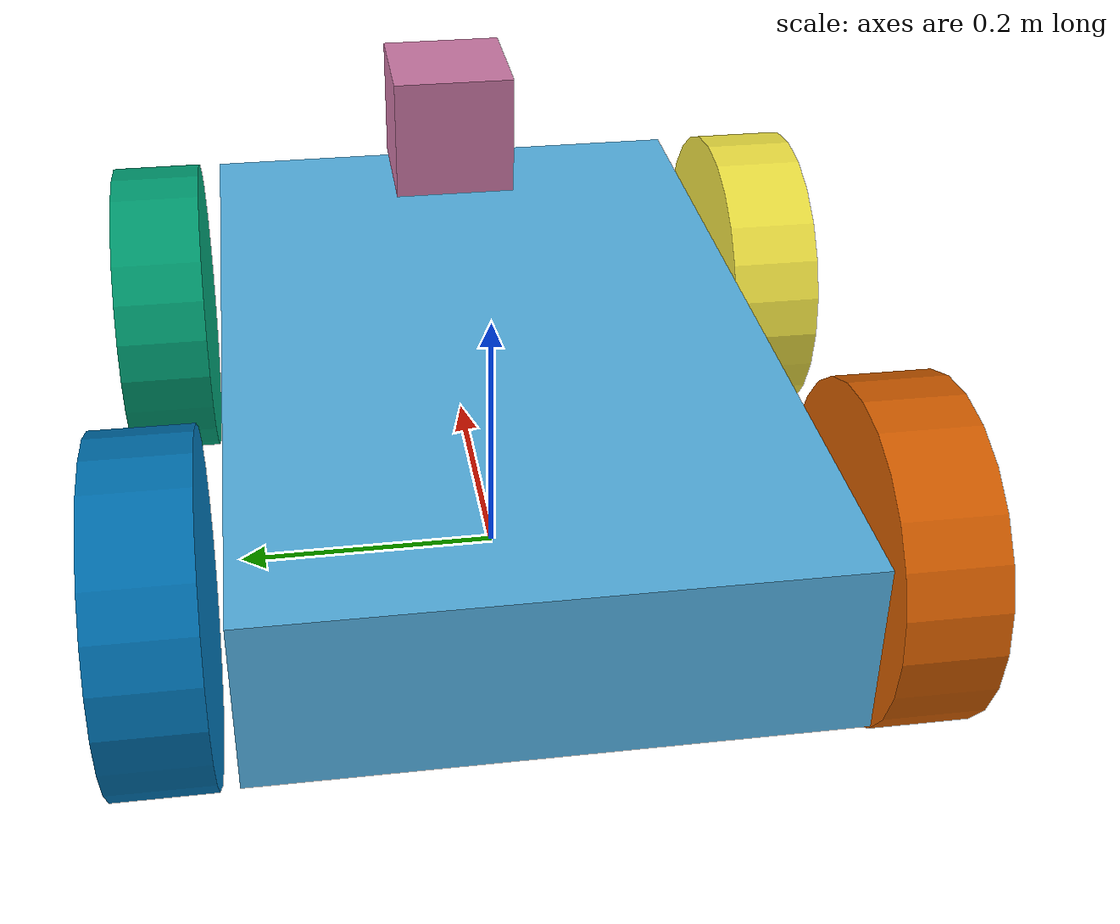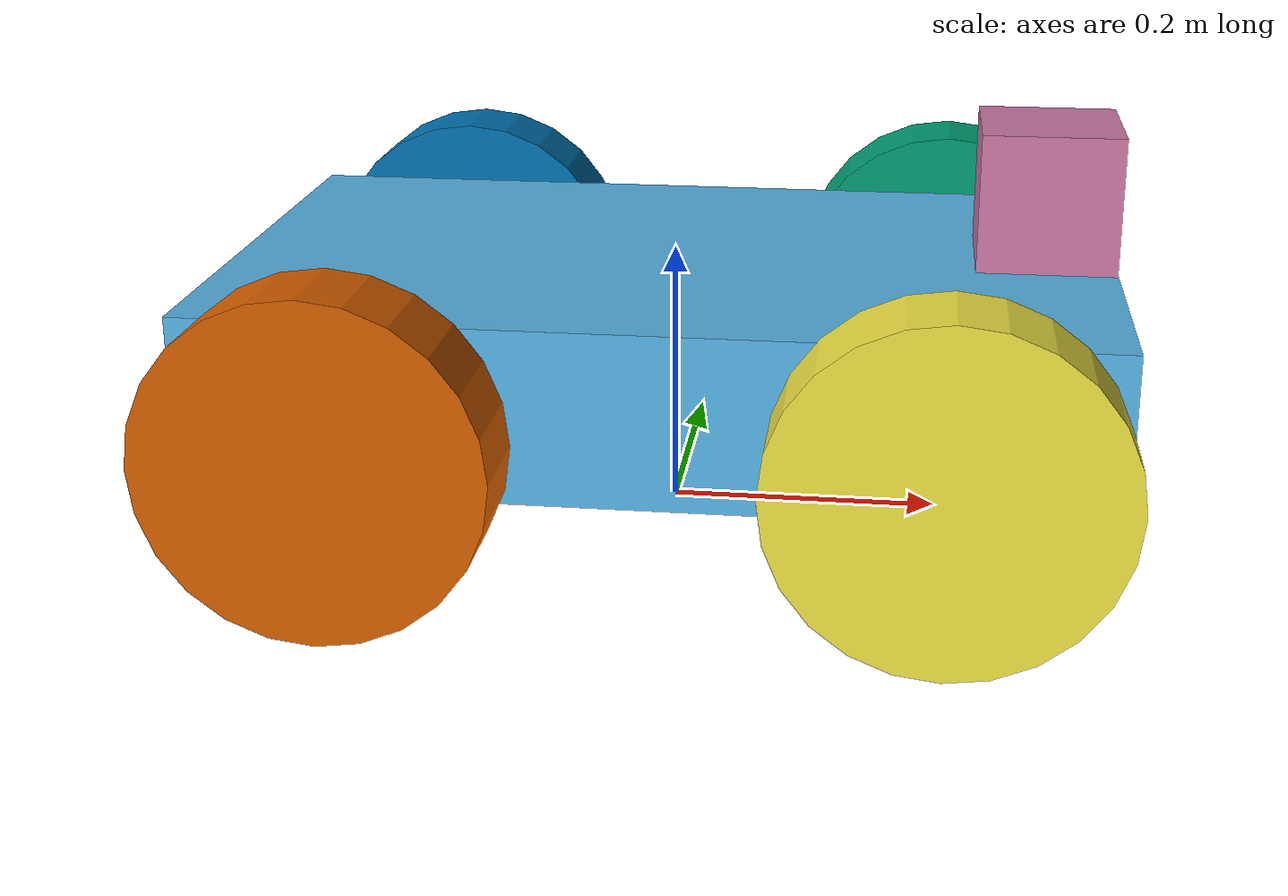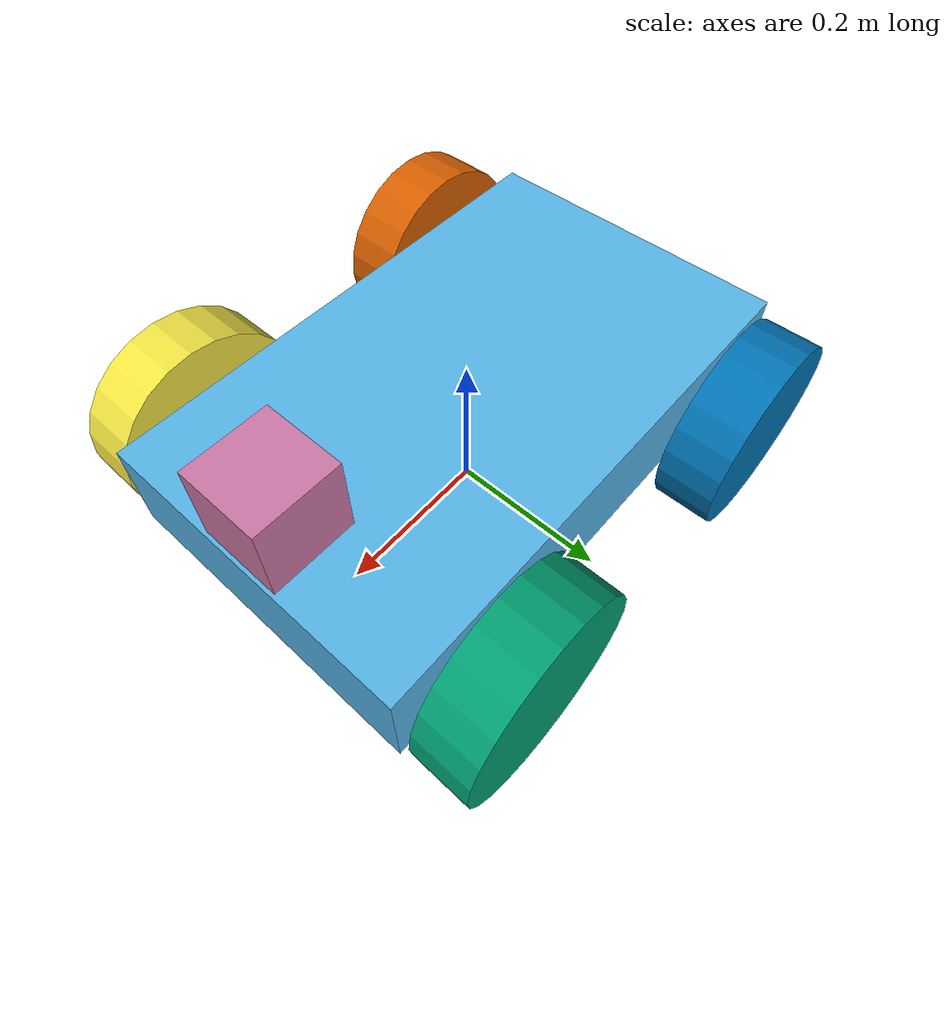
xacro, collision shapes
<?xml version='1.0'?>

<!-- Parametric description for the Avular Origin One. -->
<robot name="avular_origin_one" xmlns:xacro="http://ros.org/wiki/xacro">

  <xacro:arg name="drive_configuration" default="skid_steer_drive"/>

  <!-- Per-robot link/joint prefix (empty = none). -->
  <xacro:arg name="prefix" default=""/>
  <xacro:property name="prefix" value="$(arg prefix)"/>
  <xacro:property name="P" value="${prefix + ('_' if prefix else '')}"/>

  <xacro:property name="var" value="$(arg drive_configuration)"/>
  <xacro:if value="${var == 'skid_steer_drive'}">
    <xacro:property name="trackWidth" value="0.500"/>
    <xacro:property name="wheelbase" value="0.410"/>
    <xacro:property name="wheelRadius" value="0.120"/>
    <xacro:property name="groundClearance" value="0.064"/>
    <xacro:property name="wheelMeshFileA" value="package://origin_one_description/urdf/meshes/wheel.obj"/>
    <xacro:property name="wheelMeshFileB" value="package://origin_one_description/urdf/meshes/wheel.obj"/>
  </xacro:if>
  <xacro:if value="${var == 'big_skid_steer_drive' or var == 'elevated_skid_steer_drive'}">
    <xacro:property name="trackWidth" value="0.530"/>
    <xacro:property name="wheelbase" value="0.410"/>
    <xacro:property name="wheelRadius" value="0.165"/>
    <xacro:property name="groundClearance" value="0.109"/>
    <xacro:property name="wheelMeshFileA" value="package://origin_one_description/urdf/meshes/wheel_big.obj"/>
    <xacro:property name="wheelMeshFileB" value="package://origin_one_description/urdf/meshes/wheel_big.obj"/>
  </xacro:if>
  <xacro:if value="${var == 'mecanum_drive'}">
    <xacro:property name="trackWidth" value="0.475"/>
    <xacro:property name="wheelbase" value="0.410"/>
    <xacro:property name="wheelRadius" value="0.1015"/>
    <xacro:property name="groundClearance" value="0.0455"/>
    <xacro:property name="wheelMeshFileA" value="package://origin_one_description/urdf/meshes/wheel_mecanumA.obj"/>
    <xacro:property name="wheelMeshFileB" value="package://origin_one_description/urdf/meshes/wheel_mecanumB.obj"/>
  </xacro:if>

  <xacro:macro name="wheel_link" params="name visual_rpy mesh">
    <link name="${P}${name}">
      <inertial>
        <mass value="1"/>
        <inertia ixx="0.01" ixy="0.0" ixz="0.0" iyy="0.01" iyz="0.0" izz="0.01"/>
      </inertial>
      <collision>
        <origin xyz="0 0 0.0" rpy="0 0 0"/>
        <geometry>
          <cylinder length=".07" radius="${wheelRadius}"/>
        </geometry>
      </collision>
      <visual>
        <origin xyz="0.0 0.0 0.0" rpy="${visual_rpy}"/>
        <geometry>
          <mesh filename="${mesh}"
            scale="0.001 0.001 0.001" />
        </geometry>
      </visual>
    </link>
  </xacro:macro>

  <xacro:macro name="wheel_joint" params="name xyz">
    <joint type="continuous" name="${P}main_body_${name}">
      <origin xyz="${xyz}" rpy="-1.5707 0 0"/>
      <child link="${P}${name}" />
      <parent link="${P}main_body"/>
      <axis xyz="0 0 1"/>
      <limit effort="100000.0" velocity="10"/>
    </joint>
  </xacro:macro>

  <xacro:macro name="us_link" params="name">
    <link name="${P}us_${name}_link"/>
  </xacro:macro>

  <xacro:macro name="us_joint" params="name xyz rpy">
    <joint type="fixed" name="${P}us_${name}_joint">
      <origin xyz="${xyz}" rpy="${rpy}"/>
      <child link="${P}us_${name}_link"/>
      <parent link="${P}main_body"/>
    </joint>
  </xacro:macro>

  <link name='${P}base_link' />

  <link name='${P}main_body'>
    <inertial>
      <mass value="21.0"/>
      <inertia ixx="0.4" ixy="0.0" ixz="0.0" iyy="0.77" iyz="0.0" izz="1.01"/>
    </inertial>
    <collision name='collision'>
      <origin xyz="0 0 0.07" rpy="0 0 0.0"/>
      <geometry>
        <box size=".65 .4 .125"/>
      </geometry>
    </collision>
    <visual name='visual'>
      <origin xyz="0 0 0" rpy="0 0 0.0"/>
      <geometry>
        <mesh filename="package://origin_one_description/urdf/meshes/body.obj"
          scale="0.001 0.001 0.001" />
      </geometry>
    </visual>
  </link>

  <xacro:wheel_link name="left_front_wheel"  visual_rpy="0.0 1.5707 0.0"  mesh="${wheelMeshFileA}"/>
  <xacro:wheel_link name="right_front_wheel" visual_rpy="0.0 -1.5707 0.0" mesh="${wheelMeshFileB}"/>
  <xacro:wheel_link name="left_rear_wheel"   visual_rpy="0.0 1.5707 0.0"  mesh="${wheelMeshFileB}"/>
  <xacro:wheel_link name="right_rear_wheel"  visual_rpy="0.0 -1.5707 0.0" mesh="${wheelMeshFileA}"/>

  <link name="${P}ouster_base">
    <inertial>
      <mass value="1"/>
      <inertia ixx="0.001" ixy="0.0" ixz="0.0" iyy="0.001" iyz="0.0" izz="0.001"/>
    </inertial>
    <visual name="visual">
      <geometry>
        <mesh filename="package://origin_one_description/urdf/meshes/ouster.obj"
          scale="0.001 0.001 0.001" />
      </geometry>
    </visual>
    <collision name="collision-base">
      <origin xyz="0.0 0.0 0.0" rpy="0.0 0.0 0.0"/>
      <geometry>
        <box size="0.1 0.1 0.1"/>
      </geometry>
    </collision>
  </link>

  <link name="${P}os_sensor" />

  <link name="${P}camera_link">
    <inertial>
      <mass value="0.035"/>
      <inertia ixx="0.001" ixy="0" ixz="0.0" iyy="0.001" iyz="0.0" izz="0.001"/>
    </inertial>
    <collision name="collision">
      <origin xyz="0 0.047 0" rpy="0 0 0"/>
      <geometry>
        <box size="0.008 0.13 0.022"/>
      </geometry>
    </collision>
  </link>

  <link name="${P}gnss_link">
    <visual name="visual_pole">
      <geometry>
        <mesh filename="package://origin_one_description/urdf/meshes/antenna.obj"
          scale="0.001 0.001 0.001" />
      </geometry>
      <origin xyz="0.0 0 0.0" rpy="0 0 0"/>
      <geometry>
        <box size="0.03 0.03 0.1"/>
      </geometry>
    </visual>
  </link>

  <xacro:us_link name="left_front"/>
  <xacro:us_link name="center_front"/>
  <xacro:us_link name="right_front"/>
  <xacro:us_link name="left_rear"/>
  <xacro:us_link name="center_rear"/>
  <xacro:us_link name="right_rear"/>

  <link name="${P}imu_link"/>

  <joint type="fixed" name="${P}base_body">
    <origin xyz="0.0 0 ${groundClearance}" rpy="0 0 0"/>
    <child link="${P}main_body" />
    <parent link="${P}base_link"/>
  </joint>

  <xacro:wheel_joint name="left_front_wheel"  xyz="${wheelbase/2} ${trackWidth/2} 0.056"/>
  <xacro:wheel_joint name="right_front_wheel" xyz="${wheelbase/2} ${-trackWidth/2} 0.056"/>
  <xacro:wheel_joint name="left_rear_wheel"   xyz="${-wheelbase/2} ${trackWidth/2} 0.056"/>
  <xacro:wheel_joint name="right_rear_wheel"  xyz="${-wheelbase/2} ${-trackWidth/2} 0.056"/>

  <joint type="fixed" name="${P}ouster_platform_joint">
    <origin xyz="0.272 0 0.189" rpy="0 0 0"/>
    <child link="${P}ouster_base" />
    <parent link="${P}main_body"/>
  </joint>

  <joint name="${P}ouster_orientation_joint" type="fixed">
    <parent link="${P}ouster_base" />
    <child link="${P}os_sensor" />
    <origin xyz="0 0 0" rpy="0 0 0" />
  </joint>

  <joint type="fixed" name="${P}realsense_joint">
    <origin xyz="0.3156 0.017 0.096" rpy="0 0 0"/>
    <child link="${P}camera_link"/>
    <parent link="${P}main_body"/>
  </joint>

  <joint type="fixed" name="${P}gnss_joint">
    <origin xyz="-0.0505 0 0.212" rpy="0 0 0"/>
    <child link="${P}gnss_link"/>
    <parent link="${P}main_body"/>
  </joint>

  <xacro:us_joint name="left_front"   xyz="0.314 0.119 0.072"   rpy="0 0 -0.7854"/>
  <xacro:us_joint name="center_front" xyz="0.322 0 0.063"       rpy="0 0 0"/>
  <xacro:us_joint name="right_front"  xyz="0.314 -0.119 0.072"  rpy="0 0 0.7854"/>
  <xacro:us_joint name="left_rear"    xyz="-0.314 0.119 0.072"  rpy="0 0 -2.357"/>
  <xacro:us_joint name="center_rear"  xyz="-0.322 0 0.063"      rpy="0 0 3.1416"/>
  <xacro:us_joint name="right_rear"   xyz="-0.314 -0.119 0.072" rpy="0 0 2.357"/>

  <joint type="fixed" name="${P}imu_joint">
    <origin xyz="-0.1266 0.0749 0.066" rpy="0 0 2.357"/>
    <child link="${P}imu_link"/>
    <parent link="${P}main_body"/>
  </joint>

</robot>
